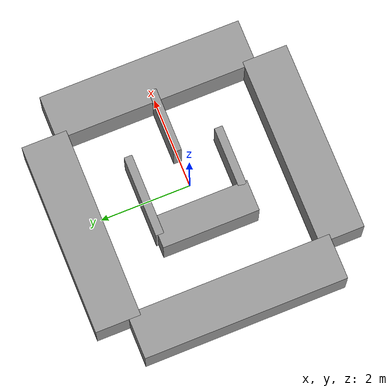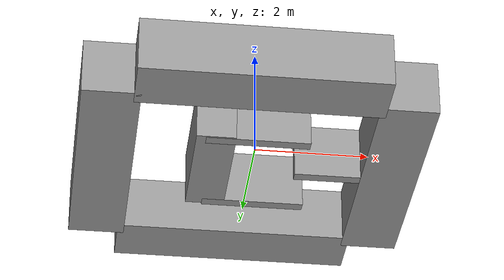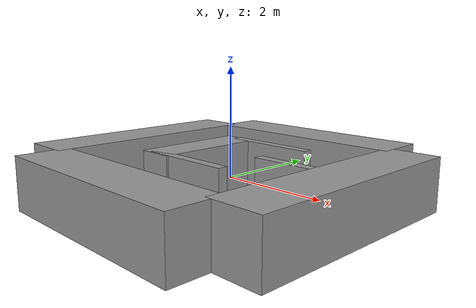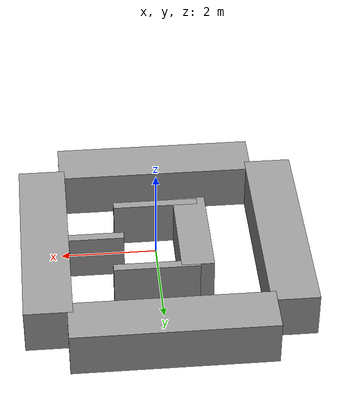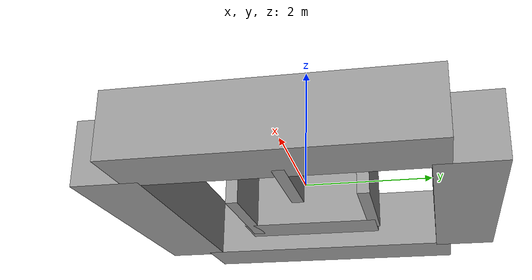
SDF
<?xml version='1.0'?>
<sdf version='1.7'>
  <model name='wall'>
    <link name='link_1'>
      <inertial>
        <mass>4.51669</mass>
        <inertia>
          <ixx>8.05495</ixx>
          <ixy>0</ixy>
          <ixz>0</ixz>
          <iyy>0.752781</iyy>
          <iyz>0</iyz>
          <izz>8.05495</izz>
        </inertia>
        <pose>0 0 0 0 -0 0</pose>
      </inertial>
      <pose>-2.65208 0.001945 0 0 -0 0</pose>
      <gravity>1</gravity>
      <self_collide>0</self_collide>
      <kinematic>0</kinematic>
      <enable_wind>0</enable_wind>
      <visual name='visual'>
        <pose>0 0 0 0 -0 0</pose>
        <geometry>
          <box>
            <size>1 4.51669 1</size>
          </box>
        </geometry>
        <material>
          <lighting>1</lighting>
          <script>
            <uri>file://media/materials/scripts/gazebo.material</uri>
            <name>Gazebo/Grey</name>
          </script>
          <shader type='pixel'>
            <normal_map>__default__</normal_map>
          </shader>
          <ambient>0.3 0.3 0.3 1</ambient>
          <diffuse>0.7 0.7 0.7 1</diffuse>
          <specular>0.01 0.01 0.01 1</specular>
          <emissive>0 0 0 1</emissive>
        </material>
        <transparency>0</transparency>
        <cast_shadows>1</cast_shadows>
      </visual>
      <collision name='collision'>
        <laser_retro>0</laser_retro>
        <max_contacts>10</max_contacts>
        <pose>0 0 0 0 -0 0</pose>
        <geometry>
          <box>
            <size>1 4.51669 1</size>
          </box>
        </geometry>
        <surface>
          <friction>
            <ode>
              <mu>1</mu>
              <mu2>1</mu2>
              <fdir1>0 0 0</fdir1>
              <slip1>0</slip1>
              <slip2>0</slip2>
            </ode>
            <torsional>
              <coefficient>1</coefficient>
              <patch_radius>0</patch_radius>
              <surface_radius>0</surface_radius>
              <use_patch_radius>1</use_patch_radius>
              <ode>
                <slip>0</slip>
              </ode>
            </torsional>
          </friction>
          <bounce>
            <restitution_coefficient>0</restitution_coefficient>
            <threshold>1e+06</threshold>
          </bounce>
          <contact>
            <collide_without_contact>0</collide_without_contact>
            <collide_without_contact_bitmask>1</collide_without_contact_bitmask>
            <collide_bitmask>1</collide_bitmask>
            <ode>
              <soft_cfm>0</soft_cfm>
              <soft_erp>0.2</soft_erp>
              <kp>1e+13</kp>
              <kd>1</kd>
              <max_vel>0.01</max_vel>
              <min_depth>0</min_depth>
            </ode>
            <bullet>
              <split_impulse>1</split_impulse>
              <split_impulse_penetration_threshold>-0.01</split_impulse_penetration_threshold>
              <soft_cfm>0</soft_cfm>
              <soft_erp>0.2</soft_erp>
              <kp>1e+13</kp>
              <kd>1</kd>
            </bullet>
          </contact>
        </surface>
      </collision>
    </link>
    <link name='link_1_clone'>
      <inertial>
        <mass>4.51669</mass>
        <inertia>
          <ixx>8.05495</ixx>
          <ixy>0</ixy>
          <ixz>0</ixz>
          <iyy>0.752781</iyy>
          <iyz>0</iyz>
          <izz>8.05495</izz>
        </inertia>
        <pose>0 0 0 0 -0 0</pose>
      </inertial>
      <pose>2.34792 0.001945 0 0 -0 0</pose>
      <gravity>1</gravity>
      <self_collide>0</self_collide>
      <kinematic>0</kinematic>
      <enable_wind>0</enable_wind>
      <visual name='visual'>
        <pose>0 0 0 0 -0 0</pose>
        <geometry>
          <box>
            <size>1 4.51669 1</size>
          </box>
        </geometry>
        <material>
          <lighting>1</lighting>
          <script>
            <uri>file://media/materials/scripts/gazebo.material</uri>
            <name>Gazebo/Grey</name>
          </script>
          <shader type='pixel'>
            <normal_map>__default__</normal_map>
          </shader>
          <ambient>0.3 0.3 0.3 1</ambient>
          <diffuse>0.7 0.7 0.7 1</diffuse>
          <specular>0.01 0.01 0.01 1</specular>
          <emissive>0 0 0 1</emissive>
        </material>
        <transparency>0</transparency>
        <cast_shadows>1</cast_shadows>
      </visual>
      <collision name='collision'>
        <laser_retro>0</laser_retro>
        <max_contacts>10</max_contacts>
        <pose>0 0 0 0 -0 0</pose>
        <geometry>
          <box>
            <size>1 4.51669 1</size>
          </box>
        </geometry>
        <surface>
          <friction>
            <ode>
              <mu>1</mu>
              <mu2>1</mu2>
              <fdir1>0 0 0</fdir1>
              <slip1>0</slip1>
              <slip2>0</slip2>
            </ode>
            <torsional>
              <coefficient>1</coefficient>
              <patch_radius>0</patch_radius>
              <surface_radius>0</surface_radius>
              <use_patch_radius>1</use_patch_radius>
              <ode>
                <slip>0</slip>
              </ode>
            </torsional>
          </friction>
          <bounce>
            <restitution_coefficient>0</restitution_coefficient>
            <threshold>1e+06</threshold>
          </bounce>
          <contact>
            <collide_without_contact>0</collide_without_contact>
            <collide_without_contact_bitmask>1</collide_without_contact_bitmask>
            <collide_bitmask>1</collide_bitmask>
            <ode>
              <soft_cfm>0</soft_cfm>
              <soft_erp>0.2</soft_erp>
              <kp>1e+13</kp>
              <kd>1</kd>
              <max_vel>0.01</max_vel>
              <min_depth>0</min_depth>
            </ode>
            <bullet>
              <split_impulse>1</split_impulse>
              <split_impulse_penetration_threshold>-0.01</split_impulse_penetration_threshold>
              <soft_cfm>0</soft_cfm>
              <soft_erp>0.2</soft_erp>
              <kp>1e+13</kp>
              <kd>1</kd>
            </bullet>
          </contact>
        </surface>
      </collision>
    </link>
    <link name='link_2'>
      <inertial>
        <mass>4.23536</mass>
        <inertia>
          <ixx>0.705893</ixx>
          <ixy>0</ixy>
          <ixz>0</ixz>
          <iyy>6.68419</iyy>
          <iyz>0</iyz>
          <izz>6.68419</izz>
        </inertia>
        <pose>0 0 0 0 -0 0</pose>
      </inertial>
      <pose>-0.152081 -2.49805 0 0 -0 0</pose>
      <gravity>1</gravity>
      <self_collide>0</self_collide>
      <kinematic>0</kinematic>
      <enable_wind>0</enable_wind>
      <visual name='visual'>
        <pose>0 0 0 0 -0 0</pose>
        <geometry>
          <box>
            <size>4.23536 1 1</size>
          </box>
        </geometry>
        <material>
          <lighting>1</lighting>
          <script>
            <uri>file://media/materials/scripts/gazebo.material</uri>
            <name>Gazebo/Grey</name>
          </script>
          <shader type='pixel'>
            <normal_map>__default__</normal_map>
          </shader>
          <ambient>0.3 0.3 0.3 1</ambient>
          <diffuse>0.7 0.7 0.7 1</diffuse>
          <specular>0.01 0.01 0.01 1</specular>
          <emissive>0 0 0 1</emissive>
        </material>
        <transparency>0</transparency>
        <cast_shadows>1</cast_shadows>
      </visual>
      <collision name='collision'>
        <laser_retro>0</laser_retro>
        <max_contacts>10</max_contacts>
        <pose>0 0 0 0 -0 0</pose>
        <geometry>
          <box>
            <size>4.23536 1 1</size>
          </box>
        </geometry>
        <surface>
          <friction>
            <ode>
              <mu>1</mu>
              <mu2>1</mu2>
              <fdir1>0 0 0</fdir1>
              <slip1>0</slip1>
              <slip2>0</slip2>
            </ode>
            <torsional>
              <coefficient>1</coefficient>
              <patch_radius>0</patch_radius>
              <surface_radius>0</surface_radius>
              <use_patch_radius>1</use_patch_radius>
              <ode>
                <slip>0</slip>
              </ode>
            </torsional>
          </friction>
          <bounce>
            <restitution_coefficient>0</restitution_coefficient>
            <threshold>1e+06</threshold>
          </bounce>
          <contact>
            <collide_without_contact>0</collide_without_contact>
            <collide_without_contact_bitmask>1</collide_without_contact_bitmask>
            <collide_bitmask>1</collide_bitmask>
            <ode>
              <soft_cfm>0</soft_cfm>
              <soft_erp>0.2</soft_erp>
              <kp>1e+13</kp>
              <kd>1</kd>
              <max_vel>0.01</max_vel>
              <min_depth>0</min_depth>
            </ode>
            <bullet>
              <split_impulse>1</split_impulse>
              <split_impulse_penetration_threshold>-0.01</split_impulse_penetration_threshold>
              <soft_cfm>0</soft_cfm>
              <soft_erp>0.2</soft_erp>
              <kp>1e+13</kp>
              <kd>1</kd>
            </bullet>
          </contact>
        </surface>
      </collision>
    </link>
    <link name='link_2_clone'>
      <inertial>
        <mass>4.23536</mass>
        <inertia>
          <ixx>0.705893</ixx>
          <ixy>0</ixy>
          <ixz>0</ixz>
          <iyy>6.68419</iyy>
          <iyz>0</iyz>
          <izz>6.68419</izz>
        </inertia>
        <pose>0 0 0 0 -0 0</pose>
      </inertial>
      <pose>-0.152081 2.50195 0 0 -0 0</pose>
      <gravity>1</gravity>
      <self_collide>0</self_collide>
      <kinematic>0</kinematic>
      <enable_wind>0</enable_wind>
      <visual name='visual'>
        <pose>0 0 0 0 -0 0</pose>
        <geometry>
          <box>
            <size>4.23536 1 1</size>
          </box>
        </geometry>
        <material>
          <lighting>1</lighting>
          <script>
            <uri>file://media/materials/scripts/gazebo.material</uri>
            <name>Gazebo/Grey</name>
          </script>
          <shader type='pixel'>
            <normal_map>__default__</normal_map>
          </shader>
          <ambient>0.3 0.3 0.3 1</ambient>
          <diffuse>0.7 0.7 0.7 1</diffuse>
          <specular>0.01 0.01 0.01 1</specular>
          <emissive>0 0 0 1</emissive>
        </material>
        <transparency>0</transparency>
        <cast_shadows>1</cast_shadows>
      </visual>
      <collision name='collision'>
        <laser_retro>0</laser_retro>
        <max_contacts>10</max_contacts>
        <pose>0 0 0 0 -0 0</pose>
        <geometry>
          <box>
            <size>4.23536 1 1</size>
          </box>
        </geometry>
        <surface>
          <friction>
            <ode>
              <mu>1</mu>
              <mu2>1</mu2>
              <fdir1>0 0 0</fdir1>
              <slip1>0</slip1>
              <slip2>0</slip2>
            </ode>
            <torsional>
              <coefficient>1</coefficient>
              <patch_radius>0</patch_radius>
              <surface_radius>0</surface_radius>
              <use_patch_radius>1</use_patch_radius>
              <ode>
                <slip>0</slip>
              </ode>
            </torsional>
          </friction>
          <bounce>
            <restitution_coefficient>0</restitution_coefficient>
            <threshold>1e+06</threshold>
          </bounce>
          <contact>
            <collide_without_contact>0</collide_without_contact>
            <collide_without_contact_bitmask>1</collide_without_contact_bitmask>
            <collide_bitmask>1</collide_bitmask>
            <ode>
              <soft_cfm>0</soft_cfm>
              <soft_erp>0.2</soft_erp>
              <kp>1e+13</kp>
              <kd>1</kd>
              <max_vel>0.01</max_vel>
              <min_depth>0</min_depth>
            </ode>
            <bullet>
              <split_impulse>1</split_impulse>
              <split_impulse_penetration_threshold>-0.01</split_impulse_penetration_threshold>
              <soft_cfm>0</soft_cfm>
              <soft_erp>0.2</soft_erp>
              <kp>1e+13</kp>
              <kd>1</kd>
            </bullet>
          </contact>
        </surface>
      </collision>
    </link>
    <link name='link_3'>
      <inertial>
        <mass>0.259262</mass>
        <inertia>
          <ixx>0.0223164</ixx>
          <ixy>0</ixy>
          <ixz>0</ixz>
          <iyy>0.0657129</iyy>
          <iyz>0</iyz>
          <izz>0.044819</izz>
        </inertia>
        <pose>0 0 0 0 -0 0</pose>
      </inertial>
      <pose>1.39809 0.001945 0 0 -0 0</pose>
      <gravity>1</gravity>
      <self_collide>0</self_collide>
      <kinematic>0</kinematic>
      <enable_wind>0</enable_wind>
      <visual name='visual'>
        <pose>0 0 0 0 -0 0</pose>
        <geometry>
          <box>
            <size>1.42882 0.181441 1</size>
          </box>
        </geometry>
        <material>
          <lighting>1</lighting>
          <script>
            <uri>file://media/materials/scripts/gazebo.material</uri>
            <name>Gazebo/Grey</name>
          </script>
          <shader type='pixel'>
            <normal_map>__default__</normal_map>
          </shader>
          <ambient>0.3 0.3 0.3 1</ambient>
          <diffuse>0.7 0.7 0.7 1</diffuse>
          <specular>0.01 0.01 0.01 1</specular>
          <emissive>0 0 0 1</emissive>
        </material>
        <transparency>0</transparency>
        <cast_shadows>1</cast_shadows>
      </visual>
      <collision name='collision'>
        <laser_retro>0</laser_retro>
        <max_contacts>10</max_contacts>
        <pose>0 0 0 0 -0 0</pose>
        <geometry>
          <box>
            <size>1.42882 0.181441 1</size>
          </box>
        </geometry>
        <surface>
          <friction>
            <ode>
              <mu>1</mu>
              <mu2>1</mu2>
              <fdir1>0 0 0</fdir1>
              <slip1>0</slip1>
              <slip2>0</slip2>
            </ode>
            <torsional>
              <coefficient>1</coefficient>
              <patch_radius>0</patch_radius>
              <surface_radius>0</surface_radius>
              <use_patch_radius>1</use_patch_radius>
              <ode>
                <slip>0</slip>
              </ode>
            </torsional>
          </friction>
          <bounce>
            <restitution_coefficient>0</restitution_coefficient>
            <threshold>1e+06</threshold>
          </bounce>
          <contact>
            <collide_without_contact>0</collide_without_contact>
            <collide_without_contact_bitmask>1</collide_without_contact_bitmask>
            <collide_bitmask>1</collide_bitmask>
            <ode>
              <soft_cfm>0</soft_cfm>
              <soft_erp>0.2</soft_erp>
              <kp>1e+13</kp>
              <kd>1</kd>
              <max_vel>0.01</max_vel>
              <min_depth>0</min_depth>
            </ode>
            <bullet>
              <split_impulse>1</split_impulse>
              <split_impulse_penetration_threshold>-0.01</split_impulse_penetration_threshold>
              <soft_cfm>0</soft_cfm>
              <soft_erp>0.2</soft_erp>
              <kp>1e+13</kp>
              <kd>1</kd>
            </bullet>
          </contact>
        </surface>
      </collision>
    </link>
    <link name='link_3_clone'>
      <inertial>
        <mass>0.32678</mass>
        <inertia>
          <ixx>0.0281281</ixx>
          <ixy>0</ixy>
          <ixz>0</ixz>
          <iyy>0.115565</iyy>
          <iyz>0</iyz>
          <izz>0.0892299</izz>
        </inertia>
        <pose>0 0 0 0 -0 0</pose>
      </inertial>
      <pose>-0.06108 -0.985721 0 0 -0 0</pose>
      <gravity>1</gravity>
      <self_collide>0</self_collide>
      <kinematic>0</kinematic>
      <enable_wind>0</enable_wind>
      <visual name='visual'>
        <pose>0 0 0 0 -0 0</pose>
        <geometry>
          <box>
            <size>1.80105 0.181441 1</size>
          </box>
        </geometry>
        <material>
          <lighting>1</lighting>
          <script>
            <uri>file://media/materials/scripts/gazebo.material</uri>
            <name>Gazebo/Grey</name>
          </script>
          <shader type='pixel'>
            <normal_map>__default__</normal_map>
          </shader>
          <ambient>0.3 0.3 0.3 1</ambient>
          <diffuse>0.7 0.7 0.7 1</diffuse>
          <specular>0.01 0.01 0.01 1</specular>
          <emissive>0 0 0 1</emissive>
        </material>
        <transparency>0</transparency>
        <cast_shadows>1</cast_shadows>
      </visual>
      <collision name='collision'>
        <laser_retro>0</laser_retro>
        <max_contacts>10</max_contacts>
        <pose>0 0 0 0 -0 0</pose>
        <geometry>
          <box>
            <size>1.80105 0.181441 1</size>
          </box>
        </geometry>
        <surface>
          <friction>
            <ode>
              <mu>1</mu>
              <mu2>1</mu2>
              <fdir1>0 0 0</fdir1>
              <slip1>0</slip1>
              <slip2>0</slip2>
            </ode>
            <torsional>
              <coefficient>1</coefficient>
              <patch_radius>0</patch_radius>
              <surface_radius>0</surface_radius>
              <use_patch_radius>1</use_patch_radius>
              <ode>
                <slip>0</slip>
              </ode>
            </torsional>
          </friction>
          <bounce>
            <restitution_coefficient>0</restitution_coefficient>
            <threshold>1e+06</threshold>
          </bounce>
          <contact>
            <collide_without_contact>0</collide_without_contact>
            <collide_without_contact_bitmask>1</collide_without_contact_bitmask>
            <collide_bitmask>1</collide_bitmask>
            <ode>
              <soft_cfm>0</soft_cfm>
              <soft_erp>0.2</soft_erp>
              <kp>1e+13</kp>
              <kd>1</kd>
              <max_vel>0.01</max_vel>
              <min_depth>0</min_depth>
            </ode>
            <bullet>
              <split_impulse>1</split_impulse>
              <split_impulse_penetration_threshold>-0.01</split_impulse_penetration_threshold>
              <soft_cfm>0</soft_cfm>
              <soft_erp>0.2</soft_erp>
              <kp>1e+13</kp>
              <kd>1</kd>
            </bullet>
          </contact>
        </surface>
      </collision>
    </link>
    <link name='link_3_clone_0'>
      <inertial>
        <mass>0.32678</mass>
        <inertia>
          <ixx>0.0281281</ixx>
          <ixy>0</ixy>
          <ixz>0</ixz>
          <iyy>0.115565</iyy>
          <iyz>0</iyz>
          <izz>0.0892299</izz>
        </inertia>
        <pose>0 0 0 0 -0 0</pose>
      </inertial>
      <pose>0.059464 1.00653 0 0 -0 0</pose>
      <gravity>1</gravity>
      <self_collide>0</self_collide>
      <kinematic>0</kinematic>
      <enable_wind>0</enable_wind>
      <visual name='visual'>
        <pose>0 0 0 0 -0 0</pose>
        <geometry>
          <box>
            <size>1.80105 0.181441 1</size>
          </box>
        </geometry>
        <material>
          <lighting>1</lighting>
          <script>
            <uri>file://media/materials/scripts/gazebo.material</uri>
            <name>Gazebo/Grey</name>
          </script>
          <shader type='pixel'>
            <normal_map>__default__</normal_map>
          </shader>
          <ambient>0.3 0.3 0.3 1</ambient>
          <diffuse>0.7 0.7 0.7 1</diffuse>
          <specular>0.01 0.01 0.01 1</specular>
          <emissive>0 0 0 1</emissive>
        </material>
        <transparency>0</transparency>
        <cast_shadows>1</cast_shadows>
      </visual>
      <collision name='collision'>
        <laser_retro>0</laser_retro>
        <max_contacts>10</max_contacts>
        <pose>0 0 0 0 -0 0</pose>
        <geometry>
          <box>
            <size>1.80105 0.181441 1</size>
          </box>
        </geometry>
        <surface>
          <friction>
            <ode>
              <mu>1</mu>
              <mu2>1</mu2>
              <fdir1>0 0 0</fdir1>
              <slip1>0</slip1>
              <slip2>0</slip2>
            </ode>
            <torsional>
              <coefficient>1</coefficient>
              <patch_radius>0</patch_radius>
              <surface_radius>0</surface_radius>
              <use_patch_radius>1</use_patch_radius>
              <ode>
                <slip>0</slip>
              </ode>
            </torsional>
          </friction>
          <bounce>
            <restitution_coefficient>0</restitution_coefficient>
            <threshold>1e+06</threshold>
          </bounce>
          <contact>
            <collide_without_contact>0</collide_without_contact>
            <collide_without_contact_bitmask>1</collide_without_contact_bitmask>
            <collide_bitmask>1</collide_bitmask>
            <ode>
              <soft_cfm>0</soft_cfm>
              <soft_erp>0.2</soft_erp>
              <kp>1e+13</kp>
              <kd>1</kd>
              <max_vel>0.01</max_vel>
              <min_depth>0</min_depth>
            </ode>
            <bullet>
              <split_impulse>1</split_impulse>
              <split_impulse_penetration_threshold>-0.01</split_impulse_penetration_threshold>
              <soft_cfm>0</soft_cfm>
              <soft_erp>0.2</soft_erp>
              <kp>1e+13</kp>
              <kd>1</kd>
            </bullet>
          </contact>
        </surface>
      </collision>
    </link>
    <link name='link_4'>
      <inertial>
        <mass>1.48205</mass>
        <inertia>
          <ixx>0.698394</ixx>
          <ixy>0</ixy>
          <ixz>0</ixz>
          <iyy>0.181782</iyy>
          <iyz>0</iyz>
          <izz>0.633168</izz>
        </inertia>
        <pose>0 0 0 0 -0 0</pose>
      </inertial>
      <pose>-0.788149 -0.030539 0 0 -0 0</pose>
      <gravity>1</gravity>
      <self_collide>0</self_collide>
      <kinematic>0</kinematic>
      <enable_wind>0</enable_wind>
      <visual name='visual'>
        <pose>0 0 0 0 -0 0</pose>
        <geometry>
          <box>
            <size>0.686929 2.15751 1</size>
          </box>
        </geometry>
        <material>
          <lighting>1</lighting>
          <script>
            <uri>file://media/materials/scripts/gazebo.material</uri>
            <name>Gazebo/Grey</name>
          </script>
          <shader type='pixel'>
            <normal_map>__default__</normal_map>
          </shader>
          <ambient>0.3 0.3 0.3 1</ambient>
          <diffuse>0.7 0.7 0.7 1</diffuse>
          <specular>0.01 0.01 0.01 1</specular>
          <emissive>0 0 0 1</emissive>
        </material>
        <transparency>0</transparency>
        <cast_shadows>1</cast_shadows>
      </visual>
      <collision name='collision'>
        <laser_retro>0</laser_retro>
        <max_contacts>10</max_contacts>
        <pose>0 0 0 0 -0 0</pose>
        <geometry>
          <box>
            <size>0.686929 2.15751 1</size>
          </box>
        </geometry>
        <surface>
          <friction>
            <ode>
              <mu>1</mu>
              <mu2>1</mu2>
              <fdir1>0 0 0</fdir1>
              <slip1>0</slip1>
              <slip2>0</slip2>
            </ode>
            <torsional>
              <coefficient>1</coefficient>
              <patch_radius>0</patch_radius>
              <surface_radius>0</surface_radius>
              <use_patch_radius>1</use_patch_radius>
              <ode>
                <slip>0</slip>
              </ode>
            </torsional>
          </friction>
          <bounce>
            <restitution_coefficient>0</restitution_coefficient>
            <threshold>1e+06</threshold>
          </bounce>
          <contact>
            <collide_without_contact>0</collide_without_contact>
            <collide_without_contact_bitmask>1</collide_without_contact_bitmask>
            <collide_bitmask>1</collide_bitmask>
            <ode>
              <soft_cfm>0</soft_cfm>
              <soft_erp>0.2</soft_erp>
              <kp>1e+13</kp>
              <kd>1</kd>
              <max_vel>0.01</max_vel>
              <min_depth>0</min_depth>
            </ode>
            <bullet>
              <split_impulse>1</split_impulse>
              <split_impulse_penetration_threshold>-0.01</split_impulse_penetration_threshold>
              <soft_cfm>0</soft_cfm>
              <soft_erp>0.2</soft_erp>
              <kp>1e+13</kp>
              <kd>1</kd>
            </bullet>
          </contact>
        </surface>
      </collision>
    </link>
    <static>0</static>
    <allow_auto_disable>1</allow_auto_disable>
  </model>
</sdf>
